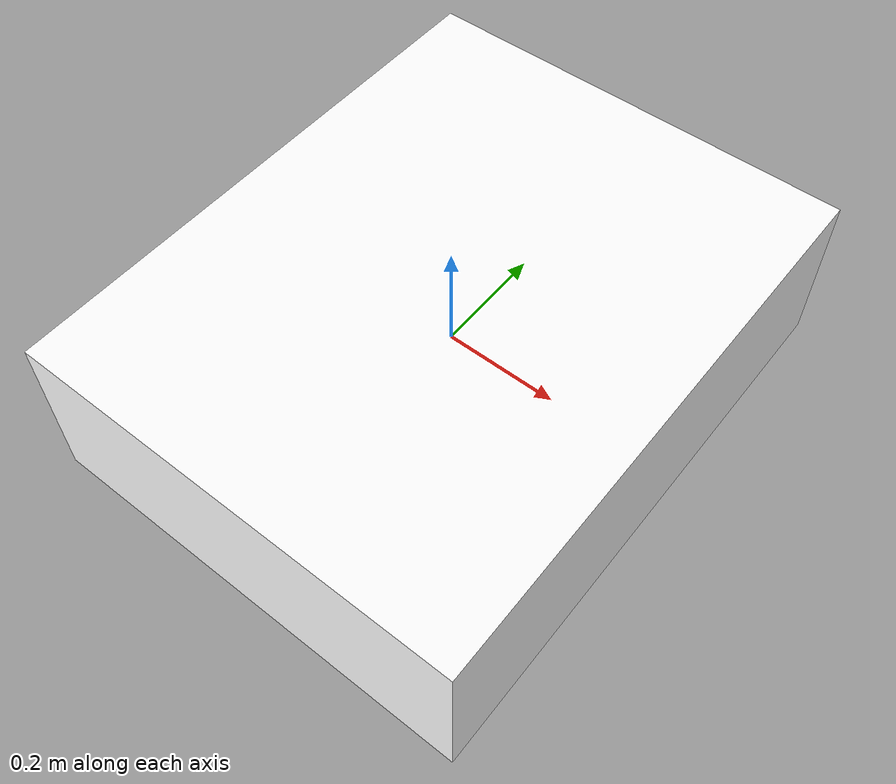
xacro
<?xml version="1.0"?>
<robot xmlns:xacro="http://www.ros.org/wiki/xacro" name="table">

  <!-- Inputs: top and bottom Z coordinates -->
  <xacro:arg name="table_z_top" default="0.15"/>
  <xacro:arg name="table_z_bottom" default="-0.15"/>
  <xacro:arg name="table_size_x" default="0.8"/>
  <xacro:arg name="table_size_y" default="1.0"/>
  <xacro:arg name="table_mass" default="10"/>

  <!-- Properties -->
  <xacro:property name="table_z_top" value="$(arg table_z_top)"/>
  <xacro:property name="table_z_bottom" value="$(arg table_z_bottom)"/>
  <xacro:property name="table_size_x" value="$(arg table_size_x)"/>
  <xacro:property name="table_size_y" value="$(arg table_size_y)"/>
  <xacro:property name="table_mass" value="$(arg table_mass)"/>

  <!-- Derived dimensions -->
  <xacro:property name="size_z" value="${table_z_top - table_z_bottom}"/>
  <xacro:property name="center_z" value="${(table_z_top + table_z_bottom) / 2.0}"/>

  <!-- Table Base Link -->
  <link name="table_root">
    <visual>
      <geometry>
        <box size="${table_size_x} ${table_size_y} ${size_z}"/>
      </geometry>
      <origin xyz="0 0 ${center_z}" rpy="0 0 0"/>
      <material name="white">
        <color rgba="1 1 1 1"/>
      </material>
    </visual>

    <collision>
      <geometry>
        <box size="${table_size_x} ${table_size_y} ${size_z}"/>
      </geometry>
      <origin xyz="0 0 ${center_z}" rpy="0 0 0"/>
    </collision>

    <inertial>
      <mass value="${table_mass}"/>
      <inertia ixx="1" ixy="0" ixz="0" iyy="1" iyz="0" izz="1"/>
    </inertial>
  </link>

  <!-- Gazebo Static Setting -->
  <gazebo reference="table_root">
    <static>true</static>
  </gazebo>

  <!-- Top Center Frame -->

</robot>
